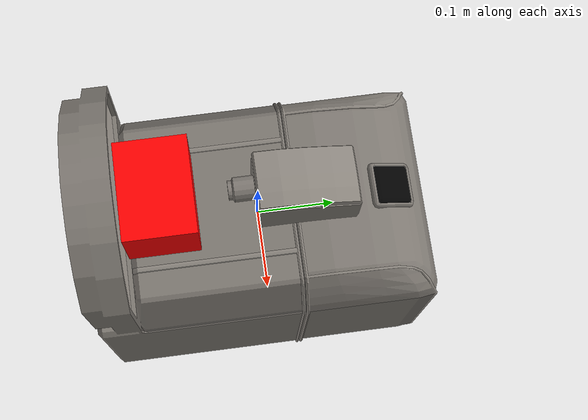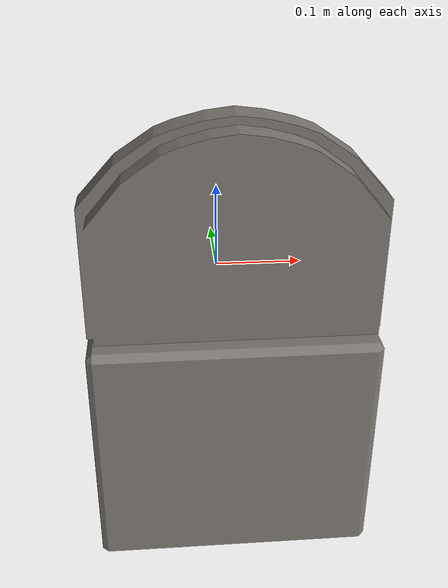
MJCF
<mujoco model="coffee_machine_4">
  <compiler autolimits="true" boundmass="0.01" angle="radian"/>
  <default>
    <default class="/">
      <default class="__VISUAL_MJT__">
        <geom contype="0" conaffinity="0" group="0"/>
      </default>
      <default class="__STRUCTURAL_MJT__">
        <geom contype="8" conaffinity="15" group="4" friction="0.90000000000000002 0.90000000000000002 0.001" solref="0.025000000000000001 1" solimp="0.998 0.998 0.001"/>
      </default>
      <default class="__DYNAMIC_MJT__">
        <geom contype="1" conaffinity="15" group="4" friction="0.90000000000000002 0.90000000000000002 0.001" solref="0.025000000000000001 1" solimp="0.998 0.998 0.001"/>
      </default>
    </default>
  </default>
  <asset>
    <material name="material_coffee_machine_backup_mat" class="/" specular="0.5" shininess="0.5" rgba="0.5 0.5 0.5 1"/>
    <material name="material_Coffee_Machine_Readout_Mat_Off" class="/" specular="0.5" shininess="0.5" rgba="0 0 0 1"/>
    <texture name="Coffee_Machine_Decal_Mat" type="2d" file="Coffee_Machine_Decal_AlbedoTransparency.png"/>
    <material name="material_Coffee_Machine_Decal_Mat" class="/" texture="Coffee_Machine_Decal_Mat" specular="0.5" shininess="0.5" rgba="1 1 1 1"/>
    <texture name="Coffee_Machine_Metal_Mat" type="2d" file="MetalBumpy_AlbedoTransparency.png"/>
    <material name="material_Coffee_Machine_Metal_Mat" class="/" texture="Coffee_Machine_Metal_Mat" specular="0.5" shininess="0.5" rgba="0.66176469999999998 0.66176469999999998 0.66176469999999998 1"/>
    <texture name="Coffee_Machine_Secondary4_Color_Mat" type="2d" file="BrushedIron_AlbedoTransparency.png"/>
    <material name="material_Coffee_Machine_Secondary4_Color_Mat" class="/" texture="Coffee_Machine_Secondary4_Color_Mat" specular="0.5" shininess="0.5" rgba="0.72058820000000001 0.72058820000000001 0.72058820000000001 1"/>
    <texture name="Coffee_Machine_Primary4_Color_Mat" type="2d" file="BumpyPlastic_Albedo.png"/>
    <material name="material_Coffee_Machine_Primary4_Color_Mat" class="/" texture="Coffee_Machine_Primary4_Color_Mat" specular="0.5" shininess="0.5" rgba="0.64705880000000005 0.64705880000000005 0.64705880000000005 1"/>
    <mesh name="coffee_machine_4_coffee_machine_4_0" class="/" file="coffee_machine_4_coffee_machine_4/coffee_machine_4_coffee_machine_4_0.obj" scale="1 1 1"/>
    <mesh name="coffee_machine_4_coffee_machine_4_1" class="/" file="coffee_machine_4_coffee_machine_4/coffee_machine_4_coffee_machine_4_1.obj" scale="1 1 1"/>
    <mesh name="coffee_machine_4_coffee_machine_4_2" class="/" file="coffee_machine_4_coffee_machine_4/coffee_machine_4_coffee_machine_4_2.obj" scale="1 1 1"/>
    <mesh name="coffee_machine_4_coffee_machine_4_3" class="/" file="coffee_machine_4_coffee_machine_4/coffee_machine_4_coffee_machine_4_3.obj" scale="1 1 1"/>
    <mesh name="coffee_machine_4_coffee_machine_4_4" class="/" file="coffee_machine_4_coffee_machine_4/coffee_machine_4_coffee_machine_4_4.obj" scale="1 1 1"/>
    <mesh name="coffee_machine_4_coffee_machine_4_5" class="/" file="coffee_machine_4_coffee_machine_4/coffee_machine_4_coffee_machine_4_5.obj" scale="1 1 1"/>
  </asset>
  <worldbody>
    <body name="coffee_machine_4">
      <joint name="coffee_machine_4_free" class="/" type="free" pos="0 0 0" axis="0 0 1" stiffness="0" range="0 0" armature="0" damping="0.10000000000000001" frictionloss="0"/>
      <body name="coffee_machine_4_coffee_machine_4" pos="0.0030000000000000001 -0.22112000000000001 -0.096009999999999998" quat="1 0 0 0">
        <geom name="coffee_machine_4_coffee_machine_4_0" class="__VISUAL_MJT__" type="mesh" material="material_coffee_machine_backup_mat" shellinertia="true" mesh="coffee_machine_4_coffee_machine_4_0"/>
        <geom name="coffee_machine_4_coffee_machine_4_1" class="__VISUAL_MJT__" type="mesh" material="material_Coffee_Machine_Readout_Mat_Off" shellinertia="false" mesh="coffee_machine_4_coffee_machine_4_1"/>
        <geom name="coffee_machine_4_coffee_machine_4_2" class="__VISUAL_MJT__" type="mesh" material="material_Coffee_Machine_Decal_Mat" shellinertia="false" mesh="coffee_machine_4_coffee_machine_4_2"/>
        <geom name="coffee_machine_4_coffee_machine_4_3" class="__VISUAL_MJT__" type="mesh" material="material_Coffee_Machine_Metal_Mat" shellinertia="false" mesh="coffee_machine_4_coffee_machine_4_3"/>
        <geom name="coffee_machine_4_coffee_machine_4_4" class="__VISUAL_MJT__" type="mesh" material="material_Coffee_Machine_Secondary4_Color_Mat" shellinertia="false" mesh="coffee_machine_4_coffee_machine_4_4"/>
        <geom name="coffee_machine_4_coffee_machine_4_5" class="__VISUAL_MJT__" type="mesh" material="material_Coffee_Machine_Primary4_Color_Mat" shellinertia="false" mesh="coffee_machine_4_coffee_machine_4_5"/>
        <site name="coffee_machine_4_Receptacle_0" class="/" type="box" rgba="1 0 0 1" size="0.06002502515912056 0.044215857982635498 0.044884588569402695" pos="-0 0.10011585801839828 0.23062098026275635" quat="1 0 0 0"/>
        <geom name="coffee_machine_4_PrimitiveCollider_0" class="__DYNAMIC_MJT__" type="box" size="0.14734183251857758 0.22112220525741577 0.15744096040725708" rgba="0 1 0 1" pos="0.0029997825622558594 0.22112220525741577 0.012903869152069092" quat="1 0 0 0"/>
        <geom name="coffee_machine_4_PrimitiveCollider_1" class="__DYNAMIC_MJT__" type="box" size="0.14734183251857758 0.028254508972167969 0.2405429482460022" rgba="0 1 0 1" pos="0.0029997825622558594 0.028254508972167969 0.096005856990814209" quat="1 0 0 0"/>
        <geom name="coffee_machine_4_PrimitiveCollider_2" class="__DYNAMIC_MJT__" type="box" size="0.039270177483558655 0.062472939491271973 0.04678642749786377" rgba="0 1 0 1" pos="0.00048519670963287354 0.28111565113067627 0.20888233184814453" quat="1 0 0 0"/>
      </body>
    </body>
  </worldbody>
</mujoco>
